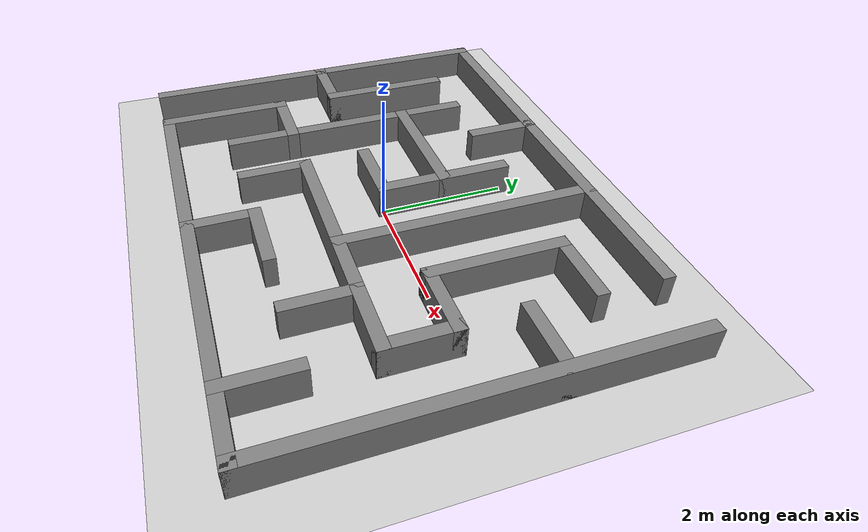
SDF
<sdf version="1.6">
 <world name="default">
  <plugin filename="gz-sim-physics-system" name="gz::sim::systems::Physics"/>
  <plugin filename="gz-sim-sensors-system" name="gz::sim::systems::Sensors">
   <render_engine>ogre2</render_engine>
  </plugin>
  <plugin filename="gz-sim-scene-broadcaster-system" name="gz::sim::systems::SceneBroadcaster"/>
  <plugin filename="gz-sim-user-commands-system" name="gz::sim::systems::UserCommands"/>
  <light name="sun" type="directional">
   <pose>0 0 10 0 0 0</pose>
   <diffuse>0.8 0.8 0.8 1</diffuse>
   <specular>0.2 0.2 0.2 1</specular>
   <attenuation>
    <range>1000</range>
    <constant>0.9</constant>
    <linear>0.01</linear>
    <quadratic>0.001</quadratic>
   </attenuation>
   <direction>-0.5 0.1 -0.9</direction>
  </light>
  <model name="ground_plane">
   <static>1</static>
   <link name="link">
    <collision name="collision">
     <geometry><plane><normal>0 0 1</normal><size>100 100</size></plane></geometry>
    </collision>
    <visual name="visual">
     <cast_shadows>0</cast_shadows>
     <geometry><plane><normal>0 0 1</normal><size>100 100</size></plane></geometry>
    </visual>
   </link>
  </model>
  <gravity>0 0 -9.8</gravity>
  <physics name="default_physics" default="0" type="ode">
   <max_step_size>0.001</max_step_size>
   <real_time_factor>1</real_time_factor>
   <real_time_update_rate>1000</real_time_update_rate>
  </physics>
  <model name="wall_0">
   <static>1</static>
   <pose>-0.500 3.000 0.25 0 0 0</pose>
   <link name="link">
    <collision name="collision"><geometry><box><size>7.200 0.200 0.5</size></box></geometry></collision>
    <visual name="visual">
     <geometry><box><size>7.200 0.200 0.5</size></box></geometry>
     <material><ambient>0.5 0.5 0.5 1</ambient></material>
    </visual>
   </link>
  </model>
  <model name="wall_1">
   <static>1</static>
   <pose>2.500 2.000 0.25 0 0 0</pose>
   <link name="link">
    <collision name="collision"><geometry><box><size>1.200 0.200 0.5</size></box></geometry></collision>
    <visual name="visual">
     <geometry><box><size>1.200 0.200 0.5</size></box></geometry>
     <material><ambient>0.5 0.5 0.5 1</ambient></material>
    </visual>
   </link>
  </model>
  <model name="wall_2">
   <static>1</static>
   <pose>-1.000 1.000 0.25 0 0 0</pose>
   <link name="link">
    <collision name="collision"><geometry><box><size>2.200 0.200 0.5</size></box></geometry></collision>
    <visual name="visual">
     <geometry><box><size>2.200 0.200 0.5</size></box></geometry>
     <material><ambient>0.5 0.5 0.5 1</ambient></material>
    </visual>
   </link>
  </model>
  <model name="wall_3">
   <static>1</static>
   <pose>3.500 1.000 0.25 0 0 0</pose>
   <link name="link">
    <collision name="collision"><geometry><box><size>1.200 0.200 0.5</size></box></geometry></collision>
    <visual name="visual">
     <geometry><box><size>1.200 0.200 0.5</size></box></geometry>
     <material><ambient>0.5 0.5 0.5 1</ambient></material>
    </visual>
   </link>
  </model>
  <model name="wall_4">
   <static>1</static>
   <pose>-3.500 0.000 0.25 0 0 0</pose>
   <link name="link">
    <collision name="collision"><geometry><box><size>1.200 0.200 0.5</size></box></geometry></collision>
    <visual name="visual">
     <geometry><box><size>1.200 0.200 0.5</size></box></geometry>
     <material><ambient>0.5 0.5 0.5 1</ambient></material>
    </visual>
   </link>
  </model>
  <model name="wall_5">
   <static>1</static>
   <pose>-0.500 0.000 0.25 0 0 0</pose>
   <link name="link">
    <collision name="collision"><geometry><box><size>1.200 0.200 0.5</size></box></geometry></collision>
    <visual name="visual">
     <geometry><box><size>1.200 0.200 0.5</size></box></geometry>
     <material><ambient>0.5 0.5 0.5 1</ambient></material>
    </visual>
   </link>
  </model>
  <model name="wall_6">
   <static>1</static>
   <pose>2.500 0.000 0.25 0 0 0</pose>
   <link name="link">
    <collision name="collision"><geometry><box><size>1.200 0.200 0.5</size></box></geometry></collision>
    <visual name="visual">
     <geometry><box><size>1.200 0.200 0.5</size></box></geometry>
     <material><ambient>0.5 0.5 0.5 1</ambient></material>
    </visual>
   </link>
  </model>
  <model name="wall_7">
   <static>1</static>
   <pose>-2.500 -1.000 0.25 0 0 0</pose>
   <link name="link">
    <collision name="collision"><geometry><box><size>1.200 0.200 0.5</size></box></geometry></collision>
    <visual name="visual">
     <geometry><box><size>1.200 0.200 0.5</size></box></geometry>
     <material><ambient>0.5 0.5 0.5 1</ambient></material>
    </visual>
   </link>
  </model>
  <model name="wall_8">
   <static>1</static>
   <pose>1.000 -1.000 0.25 0 0 0</pose>
   <link name="link">
    <collision name="collision"><geometry><box><size>4.200 0.200 0.5</size></box></geometry></collision>
    <visual name="visual">
     <geometry><box><size>4.200 0.200 0.5</size></box></geometry>
     <material><ambient>0.5 0.5 0.5 1</ambient></material>
    </visual>
   </link>
  </model>
  <model name="wall_9">
   <static>1</static>
   <pose>0.500 -2.000 0.25 0 0 0</pose>
   <link name="link">
    <collision name="collision"><geometry><box><size>1.200 0.200 0.5</size></box></geometry></collision>
    <visual name="visual">
     <geometry><box><size>1.200 0.200 0.5</size></box></geometry>
     <material><ambient>0.5 0.5 0.5 1</ambient></material>
    </visual>
   </link>
  </model>
  <model name="wall_10">
   <static>1</static>
   <pose>0.500 -3.000 0.25 0 0 0</pose>
   <link name="link">
    <collision name="collision"><geometry><box><size>7.200 0.200 0.5</size></box></geometry></collision>
    <visual name="visual">
     <geometry><box><size>7.200 0.200 0.5</size></box></geometry>
     <material><ambient>0.5 0.5 0.5 1</ambient></material>
    </visual>
   </link>
  </model>
  <model name="wall_11">
   <static>1</static>
   <pose>-4.000 0.000 0.25 0 0 0</pose>
   <link name="link">
    <collision name="collision"><geometry><box><size>0.200 6.200 0.5</size></box></geometry></collision>
    <visual name="visual">
     <geometry><box><size>0.200 6.200 0.5</size></box></geometry>
     <material><ambient>0.5 0.5 0.5 1</ambient></material>
    </visual>
   </link>
  </model>
  <model name="wall_12">
   <static>1</static>
   <pose>-3.000 1.000 0.25 0 0 0</pose>
   <link name="link">
    <collision name="collision"><geometry><box><size>0.200 2.200 0.5</size></box></geometry></collision>
    <visual name="visual">
     <geometry><box><size>0.200 2.200 0.5</size></box></geometry>
     <material><ambient>0.5 0.5 0.5 1</ambient></material>
    </visual>
   </link>
  </model>
  <model name="wall_13">
   <static>1</static>
   <pose>-3.000 -2.000 0.25 0 0 0</pose>
   <link name="link">
    <collision name="collision"><geometry><box><size>0.200 2.200 0.5</size></box></geometry></collision>
    <visual name="visual">
     <geometry><box><size>0.200 2.200 0.5</size></box></geometry>
     <material><ambient>0.5 0.5 0.5 1</ambient></material>
    </visual>
   </link>
  </model>
  <model name="wall_14">
   <static>1</static>
   <pose>-2.000 0.000 0.25 0 0 0</pose>
   <link name="link">
    <collision name="collision"><geometry><box><size>0.200 4.200 0.5</size></box></geometry></collision>
    <visual name="visual">
     <geometry><box><size>0.200 4.200 0.5</size></box></geometry>
     <material><ambient>0.5 0.5 0.5 1</ambient></material>
    </visual>
   </link>
  </model>
  <model name="wall_15">
   <static>1</static>
   <pose>-1.000 2.500 0.25 0 0 0</pose>
   <link name="link">
    <collision name="collision"><geometry><box><size>0.200 1.200 0.5</size></box></geometry></collision>
    <visual name="visual">
     <geometry><box><size>0.200 1.200 0.5</size></box></geometry>
     <material><ambient>0.5 0.5 0.5 1</ambient></material>
    </visual>
   </link>
  </model>
  <model name="wall_16">
   <static>1</static>
   <pose>-1.000 -1.500 0.25 0 0 0</pose>
   <link name="link">
    <collision name="collision"><geometry><box><size>0.200 1.200 0.5</size></box></geometry></collision>
    <visual name="visual">
     <geometry><box><size>0.200 1.200 0.5</size></box></geometry>
     <material><ambient>0.5 0.5 0.5 1</ambient></material>
    </visual>
   </link>
  </model>
  <model name="wall_17">
   <static>1</static>
   <pose>0.000 1.000 0.25 0 0 0</pose>
   <link name="link">
    <collision name="collision"><geometry><box><size>0.200 2.200 0.5</size></box></geometry></collision>
    <visual name="visual">
     <geometry><box><size>0.200 2.200 0.5</size></box></geometry>
     <material><ambient>0.5 0.5 0.5 1</ambient></material>
    </visual>
   </link>
  </model>
  <model name="wall_18">
   <static>1</static>
   <pose>0.000 -2.500 0.25 0 0 0</pose>
   <link name="link">
    <collision name="collision"><geometry><box><size>0.200 1.200 0.5</size></box></geometry></collision>
    <visual name="visual">
     <geometry><box><size>0.200 1.200 0.5</size></box></geometry>
     <material><ambient>0.5 0.5 0.5 1</ambient></material>
    </visual>
   </link>
  </model>
  <model name="wall_19">
   <static>1</static>
   <pose>1.000 1.000 0.25 0 0 0</pose>
   <link name="link">
    <collision name="collision"><geometry><box><size>0.200 4.200 0.5</size></box></geometry></collision>
    <visual name="visual">
     <geometry><box><size>0.200 4.200 0.5</size></box></geometry>
     <material><ambient>0.5 0.5 0.5 1</ambient></material>
    </visual>
   </link>
  </model>
  <model name="wall_20">
   <static>1</static>
   <pose>2.000 1.000 0.25 0 0 0</pose>
   <link name="link">
    <collision name="collision"><geometry><box><size>0.200 2.200 0.5</size></box></geometry></collision>
    <visual name="visual">
     <geometry><box><size>0.200 2.200 0.5</size></box></geometry>
     <material><ambient>0.5 0.5 0.5 1</ambient></material>
    </visual>
   </link>
  </model>
  <model name="wall_21">
   <static>1</static>
   <pose>2.000 -1.500 0.25 0 0 0</pose>
   <link name="link">
    <collision name="collision"><geometry><box><size>0.200 1.200 0.5</size></box></geometry></collision>
    <visual name="visual">
     <geometry><box><size>0.200 1.200 0.5</size></box></geometry>
     <material><ambient>0.5 0.5 0.5 1</ambient></material>
    </visual>
   </link>
  </model>
  <model name="wall_22">
   <static>1</static>
   <pose>3.000 -0.500 0.25 0 0 0</pose>
   <link name="link">
    <collision name="collision"><geometry><box><size>0.200 1.200 0.5</size></box></geometry></collision>
    <visual name="visual">
     <geometry><box><size>0.200 1.200 0.5</size></box></geometry>
     <material><ambient>0.5 0.5 0.5 1</ambient></material>
    </visual>
   </link>
  </model>
  <model name="wall_23">
   <static>1</static>
   <pose>3.000 -2.500 0.25 0 0 0</pose>
   <link name="link">
    <collision name="collision"><geometry><box><size>0.200 1.200 0.5</size></box></geometry></collision>
    <visual name="visual">
     <geometry><box><size>0.200 1.200 0.5</size></box></geometry>
     <material><ambient>0.5 0.5 0.5 1</ambient></material>
    </visual>
   </link>
  </model>
  <model name="wall_24">
   <static>1</static>
   <pose>4.000 0.000 0.25 0 0 0</pose>
   <link name="link">
    <collision name="collision"><geometry><box><size>0.200 6.200 0.5</size></box></geometry></collision>
    <visual name="visual">
     <geometry><box><size>0.200 6.200 0.5</size></box></geometry>
     <material><ambient>0.5 0.5 0.5 1</ambient></material>
    </visual>
   </link>
  </model>
 </world>
</sdf>
